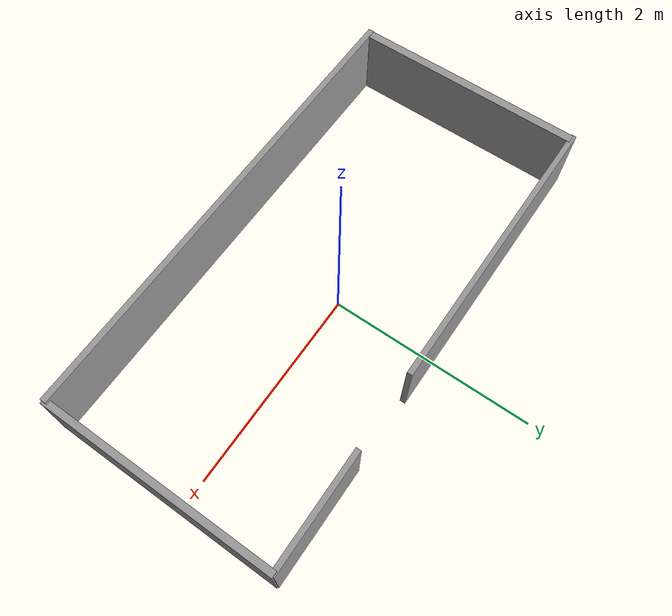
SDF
<?xml version='1.0'?>
<sdf version='1.7'>
  <model name='room-d'>
    <link name='link_1'>
      <inertial>
        <mass>0.125423</mass>
        <inertia>
          <ixx>0.00613653</ixx>
          <ixy>0</ixy>
          <ixz>0</ixz>
          <iyy>0.100576</iyy>
          <iyz>0</iyz>
          <izz>0.0945024</izz>
        </inertia>
        <pose>0 0 0 0 -0 0</pose>
      </inertial>
      <pose>-1.175 0.95466 -0.024889 0 -0 0</pose>
      <gravity>0</gravity>
      <self_collide>0</self_collide>
      <kinematic>0</kinematic>
      <enable_wind>0</enable_wind>
      <visual name='visual'>
        <pose>0 0 0 0 -0 0</pose>
        <geometry>
          <box>
            <size>3.00643 0.054903 0.764268</size>
          </box>
        </geometry>
        <material>
          <lighting>1</lighting>
          <script>
            <uri>file://media/materials/scripts/gazebo.material</uri>
            <name>Gazebo/Grey</name>
          </script>
          <shader type='pixel'>
            <normal_map>__default__</normal_map>
          </shader>
        </material>
        <transparency>0</transparency>
        <cast_shadows>1</cast_shadows>
      </visual>
      <collision name='collision'>
        <laser_retro>0</laser_retro>
        <max_contacts>10</max_contacts>
        <pose>0 0 0 0 -0 0</pose>
        <geometry>
          <box>
            <size>3.00643 0.054903 0.764268</size>
          </box>
        </geometry>
        <surface>
          <friction>
            <ode>
              <mu>1</mu>
              <mu2>1</mu2>
              <fdir1>0 0 0</fdir1>
              <slip1>0</slip1>
              <slip2>0</slip2>
            </ode>
            <torsional>
              <coefficient>1</coefficient>
              <patch_radius>0</patch_radius>
              <surface_radius>0</surface_radius>
              <use_patch_radius>1</use_patch_radius>
              <ode>
                <slip>0</slip>
              </ode>
            </torsional>
          </friction>
          <bounce>
            <restitution_coefficient>0</restitution_coefficient>
            <threshold>1e+06</threshold>
          </bounce>
          <contact>
              <collide_bitmask>0x000010</collide_bitmask>
            <ode>
              <soft_cfm>0</soft_cfm>
              <soft_erp>0.2</soft_erp>
              <kp>1e+13</kp>
              <kd>1</kd>
              <max_vel>0.01</max_vel>
              <min_depth>0</min_depth>
            </ode>
            <bullet>
              <split_impulse>1</split_impulse>
              <split_impulse_penetration_threshold>-0.01</split_impulse_penetration_threshold>
              <soft_cfm>0</soft_cfm>
              <soft_erp>0.2</soft_erp>
              <kp>1e+13</kp>
              <kd>1</kd>
            </bullet>
          </contact>
        </surface>
      </collision>
    </link>
    <link name='link_2'>
      <inertial>
        <mass>0.0462245</mass>
        <inertia>
          <ixx>0.00191101</ixx>
          <ixy>0</ixy>
          <ixz>0</ixz>
          <iyy>0.00744204</iyy>
          <iyz>0</iyz>
          <izz>0.00555423</izz>
        </inertia>
        <pose>0 0 0 0 -0 0</pose>
      </inertial>
      <pose>1.69085 0.952934 -0.055322 0 -0 0</pose>
      <self_collide>0</self_collide>
      <enable_wind>0</enable_wind>
      <kinematic>0</kinematic>
      <visual name='visual'>
        <pose>0 0 0 0 -0 0</pose>
        <geometry>
          <box>
            <size>1.19953 0.054866 0.702206</size>
          </box>
        </geometry>
        <material>
          <lighting>1</lighting>
          <script>
            <uri>file://media/materials/scripts/gazebo.material</uri>
            <name>Gazebo/Grey</name>
          </script>
          <shader type='pixel'/>
        </material>
        <transparency>0</transparency>
        <cast_shadows>1</cast_shadows>
      </visual>
      <collision name='collision'>
        <laser_retro>0</laser_retro>
        <max_contacts>10</max_contacts>
        <pose>0 0 0 0 -0 0</pose>
        <geometry>
          <box>
            <size>1.19953 0.054866 0.702206</size>
          </box>
        </geometry>
        <surface>
          <friction>
            <ode>
              <mu>1</mu>
              <mu2>1</mu2>
              <fdir1>0 0 0</fdir1>
              <slip1>0</slip1>
              <slip2>0</slip2>
            </ode>
            <torsional>
              <coefficient>1</coefficient>
              <patch_radius>0</patch_radius>
              <surface_radius>0</surface_radius>
              <use_patch_radius>1</use_patch_radius>
              <ode>
                <slip>0</slip>
              </ode>
            </torsional>
          </friction>
          <bounce>
            <restitution_coefficient>0</restitution_coefficient>
            <threshold>1e+06</threshold>
          </bounce>
          <contact>
              <collide_bitmask>0x000010</collide_bitmask>
            <ode>
              <soft_cfm>0</soft_cfm>
              <soft_erp>0.2</soft_erp>
              <kp>1e+13</kp>
              <kd>1</kd>
              <max_vel>0.01</max_vel>
              <min_depth>0</min_depth>
            </ode>
            <bullet>
              <split_impulse>1</split_impulse>
              <split_impulse_penetration_threshold>-0.01</split_impulse_penetration_threshold>
              <soft_cfm>0</soft_cfm>
              <soft_erp>0.2</soft_erp>
              <kp>1e+13</kp>
              <kd>1</kd>
            </bullet>
          </contact>
        </surface>
      </collision>
    </link>
    <link name='link_4'>
      <inertial>
        <mass>0.119228</mass>
        <inertia>
          <ixx>0.0635032</ixx>
          <ixy>0</ixy>
          <ixz>0</ixz>
          <iyy>0.0053794</iyy>
          <iyz>0</iyz>
          <izz>0.0582137</izz>
        </inertia>
        <pose>0 0 0 0 -0 0</pose>
      </inertial>
      <pose>2.26979 -0.239646 -0.040087 0 -0 0</pose>
      <self_collide>0</self_collide>
      <enable_wind>0</enable_wind>
      <kinematic>0</kinematic>
      <visual name='visual'>
        <pose>0 0 0 0 -0 0</pose>
        <geometry>
          <box>
            <size>0.067282 2.41962 0.732733</size>
          </box>
        </geometry>
        <material>
          <lighting>1</lighting>
          <script>
            <uri>file://media/materials/scripts/gazebo.material</uri>
            <name>Gazebo/Grey</name>
          </script>
          <shader type='pixel'/>
        </material>
        <transparency>0</transparency>
        <cast_shadows>1</cast_shadows>
      </visual>
      <collision name='collision'>
        <laser_retro>0</laser_retro>
        <max_contacts>10</max_contacts>
        <pose>0 0 0 0 -0 0</pose>
        <geometry>
          <box>
            <size>0.067282 2.41962 0.732733</size>
          </box>
        </geometry>
        <surface>
          <friction>
            <ode>
              <mu>1</mu>
              <mu2>1</mu2>
              <fdir1>0 0 0</fdir1>
              <slip1>0</slip1>
              <slip2>0</slip2>
            </ode>
            <torsional>
              <coefficient>1</coefficient>
              <patch_radius>0</patch_radius>
              <surface_radius>0</surface_radius>
              <use_patch_radius>1</use_patch_radius>
              <ode>
                <slip>0</slip>
              </ode>
            </torsional>
          </friction>
          <bounce>
            <restitution_coefficient>0</restitution_coefficient>
            <threshold>1e+06</threshold>
          </bounce>
          <contact>
              <collide_bitmask>0x000010</collide_bitmask>
            <ode>
              <soft_cfm>0</soft_cfm>
              <soft_erp>0.2</soft_erp>
              <kp>1e+13</kp>
              <kd>1</kd>
              <max_vel>0.01</max_vel>
              <min_depth>0</min_depth>
            </ode>
            <bullet>
              <split_impulse>1</split_impulse>
              <split_impulse_penetration_threshold>-0.01</split_impulse_penetration_threshold>
              <soft_cfm>0</soft_cfm>
              <soft_erp>0.2</soft_erp>
              <kp>1e+13</kp>
              <kd>1</kd>
            </bullet>
          </contact>
        </surface>
      </collision>
    </link>
    <link name='link_5'>
      <inertial>
        <mass>0.239127</mass>
        <inertia>
          <ixx>0.0121759</ixx>
          <ixy>0</ixy>
          <ixz>0</ixz>
          <iyy>0.500678</iyy>
          <iyz>0</iyz>
          <izz>0.488656</izz>
        </inertia>
        <pose>0 0 0 0 -0 0</pose>
      </inertial>
      <pose>-0.192505 -1.42291 -0.023103 0 -0 0</pose>
      <self_collide>0</self_collide>
      <enable_wind>0</enable_wind>
      <kinematic>0</kinematic>
      <visual name='visual'>
        <pose>0 0 0 0 -0 0</pose>
        <geometry>
          <box>
            <size>4.95158 0.062118 0.779203</size>
          </box>
        </geometry>
        <material>
          <lighting>1</lighting>
          <script>
            <uri>file://media/materials/scripts/gazebo.material</uri>
            <name>Gazebo/Grey</name>
          </script>
          <shader type='pixel'/>
        </material>
        <transparency>0</transparency>
        <cast_shadows>1</cast_shadows>
      </visual>
      <collision name='collision'>
        <laser_retro>0</laser_retro>
        <max_contacts>10</max_contacts>
        <pose>0 0 0 0 -0 0</pose>
        <geometry>
          <box>
            <size>4.95158 0.062118 0.779203</size>
          </box>
        </geometry>
        <surface>
          <friction>
            <ode>
              <mu>1</mu>
              <mu2>1</mu2>
              <fdir1>0 0 0</fdir1>
              <slip1>0</slip1>
              <slip2>0</slip2>
            </ode>
            <torsional>
              <coefficient>1</coefficient>
              <patch_radius>0</patch_radius>
              <surface_radius>0</surface_radius>
              <use_patch_radius>1</use_patch_radius>
              <ode>
                <slip>0</slip>
              </ode>
            </torsional>
          </friction>
          <bounce>
            <restitution_coefficient>0</restitution_coefficient>
            <threshold>1e+06</threshold>
          </bounce>
          <contact>
            <collide_bitmask>0x000010</collide_bitmask>
            <ode>
              <soft_cfm>0</soft_cfm>
              <soft_erp>0.2</soft_erp>
              <kp>1e+13</kp>
              <kd>1</kd>
              <max_vel>0.01</max_vel>
              <min_depth>0</min_depth>
            </ode>
            <bullet>
              <split_impulse>1</split_impulse>
              <split_impulse_penetration_threshold>-0.01</split_impulse_penetration_threshold>
              <soft_cfm>0</soft_cfm>
              <soft_erp>0.2</soft_erp>
              <kp>1e+13</kp>
              <kd>1</kd>
            </bullet>
          </contact>
        </surface>
      </collision>
    </link>
    <link name='link_6'>
      <inertial>
        <mass>0.162063</mass>
        <inertia>
          <ixx>0.0854528</ixx>
          <ixy>0</ixy>
          <ixz>0</ixz>
          <iyy>0.00812041</iyy>
          <iyz>0</iyz>
          <izz>0.0775411</izz>
        </inertia>
        <pose>0 0 0 0 -0 0</pose>
      </inertial>
      <pose>-2.62446 -0.245042 -0.024165 0 -0 0</pose>
      <self_collide>0</self_collide>
      <enable_wind>0</enable_wind>
      <kinematic>0</kinematic>
      <visual name='visual'>
        <pose>0 0 0 0 -0 0</pose>
        <geometry>
          <box>
            <size>0.087916 2.39454 0.770421</size>
          </box>
        </geometry>
        <material>
          <lighting>1</lighting>
          <script>
            <uri>file://media/materials/scripts/gazebo.material</uri>
            <name>Gazebo/Grey</name>
          </script>
          <shader type='pixel'/>
        </material>
        <transparency>0</transparency>
        <cast_shadows>1</cast_shadows>
      </visual>
      <collision name='collision'>
        <laser_retro>0</laser_retro>
        <max_contacts>10</max_contacts>
        <pose>0 0 0 0 -0 0</pose>
        <geometry>
          <box>
            <size>0.087916 2.39454 0.770421</size>
          </box>
        </geometry>
        <surface>
          <friction>
            <ode>
              <mu>1</mu>
              <mu2>1</mu2>
              <fdir1>0 0 0</fdir1>
              <slip1>0</slip1>
              <slip2>0</slip2>
            </ode>
            <torsional>
              <coefficient>1</coefficient>
              <patch_radius>0</patch_radius>
              <surface_radius>0</surface_radius>
              <use_patch_radius>1</use_patch_radius>
              <ode>
                <slip>0</slip>
              </ode>
            </torsional>
          </friction>
          <bounce>
            <restitution_coefficient>0</restitution_coefficient>
            <threshold>1e+06</threshold>
          </bounce>
          <contact>
            <collide_bitmask>0x000010</collide_bitmask>
            <ode>
              <soft_cfm>0</soft_cfm>
              <soft_erp>0.2</soft_erp>
              <kp>1e+13</kp>
              <kd>1</kd>
              <max_vel>0.01</max_vel>
              <min_depth>0</min_depth>
            </ode>
            <bullet>
              <split_impulse>1</split_impulse>
              <split_impulse_penetration_threshold>-0.01</split_impulse_penetration_threshold>
              <soft_cfm>0</soft_cfm>
              <soft_erp>0.2</soft_erp>
              <kp>1e+13</kp>
              <kd>1</kd>
            </bullet>
          </contact>
        </surface>
      </collision>
    </link>
    <static>1</static>
    <allow_auto_disable>1</allow_auto_disable>
  </model>
</sdf>
